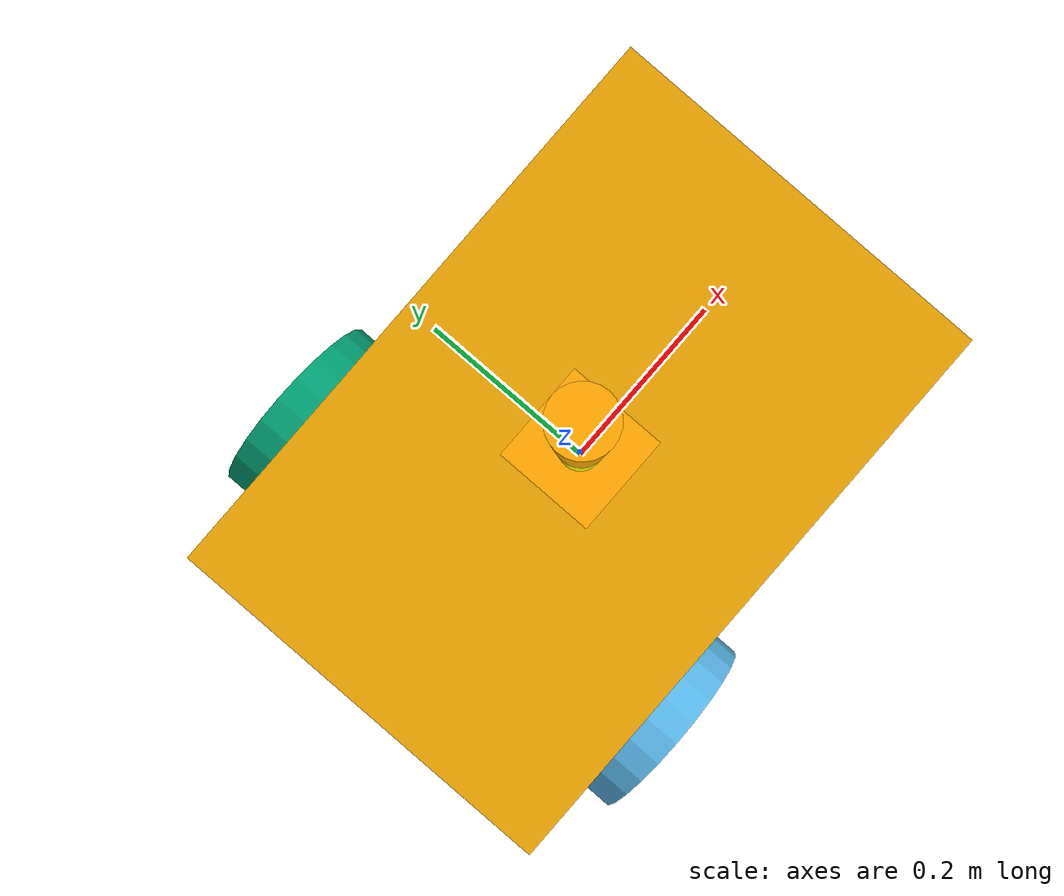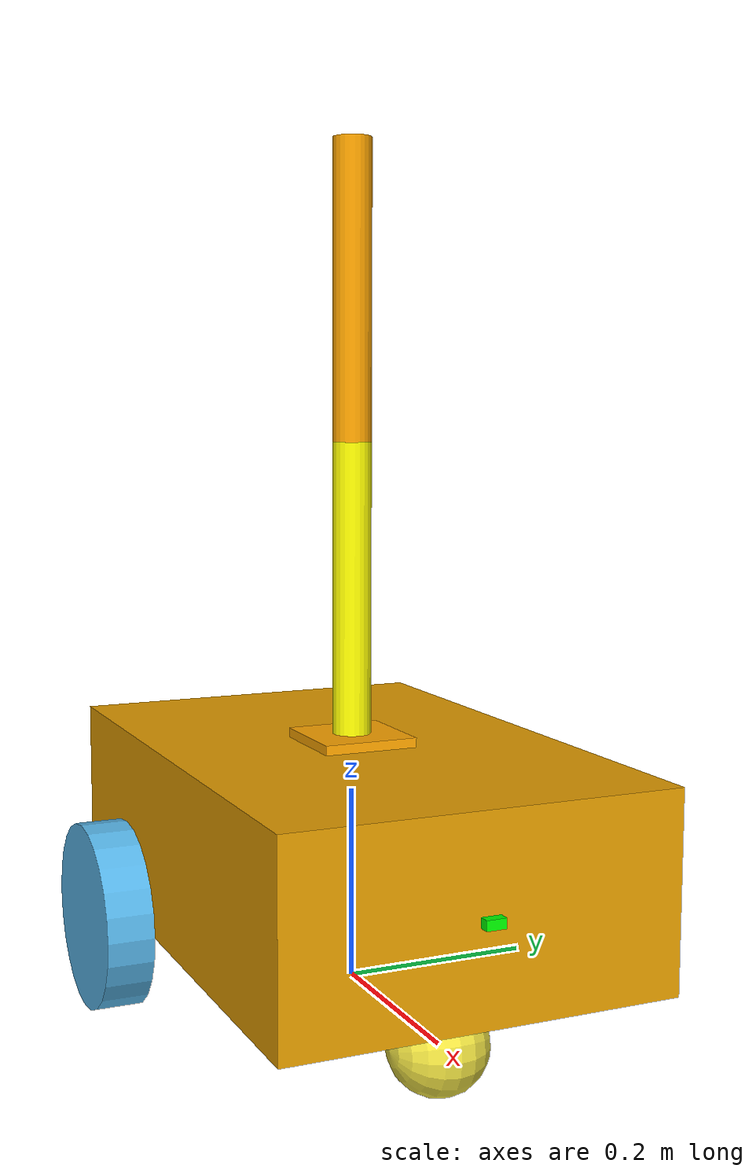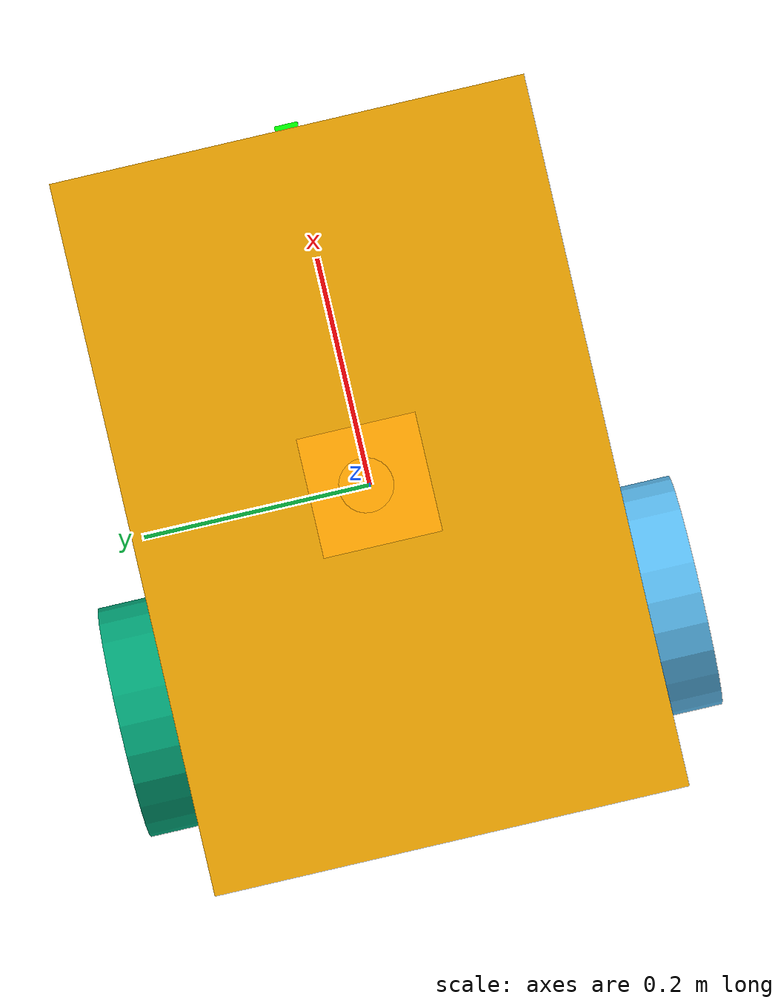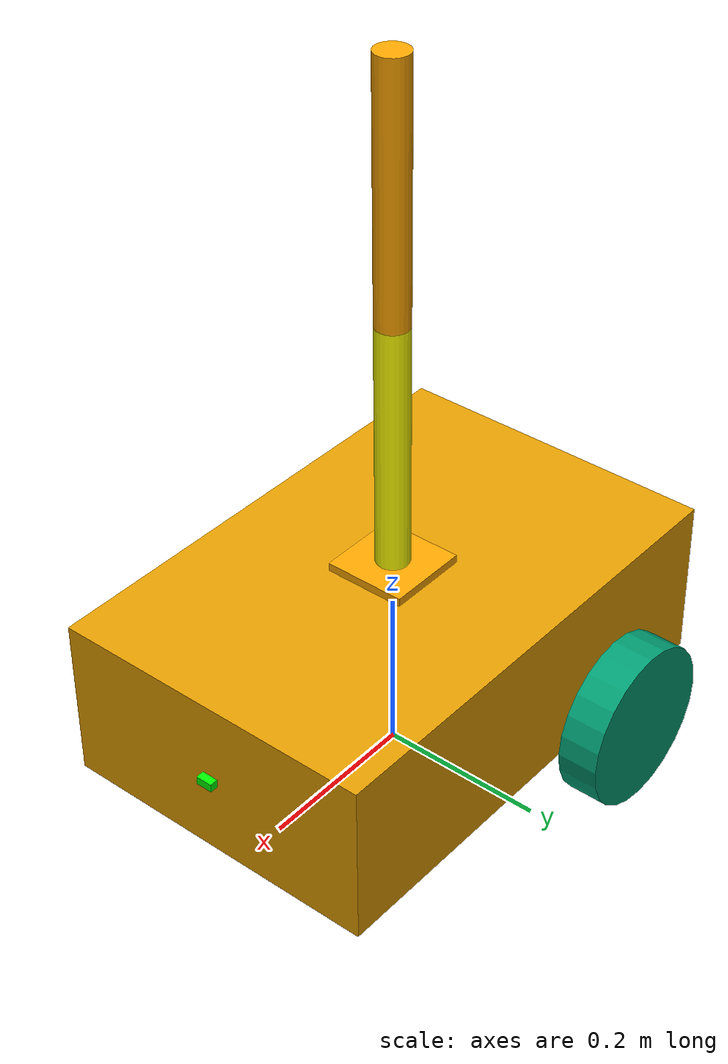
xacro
<?xml version="1.0"?>

<robot name="car" xmlns:xacro="http://www.ros.org/wiki/xacro">

<xacro:include filename="material.xacro" />
<xacro:include filename="mobile.links.xacro" />
<xacro:include filename="arm.links.xacro" />
<xacro:include filename="camera.xacro" />

<xacro:include filename="gazebo.plugin.xacro" />

</robot>

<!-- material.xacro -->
<!-- colors,inertia xacros -->
<robot xmlns:xacro="http://www.ros.org/wiki/xacro">
<!-- تعريف الألوان خارج الماكرو لتجنب تكرار التعريف -->
    <material name="red">
        <color rgba="1.0 0.0 0.0 1.0"/>
    </material>
    <material name="green">
        <color rgba="0.0 1.0 0.0 1.0"/>
    </material>
    <material name="blue">
        <color rgba="0.0 0.0 1.0 1.0"/>
    </material>
    <material name="yellow">
        <color rgba="1.0 1.0 0.0 1.0"/>
    </material>
      <material name="orange">
        <color rgba="1.0 0.65 0.0 1.0"/>
    </material>

    <xacro:macro name="rectagle_inertia" params=" m x y z o_xyz o_rpy ">
        <inertial>
            <mass value="${m}"/>
            <origin xyz="${o_xyz}" rpy="${o_rpy}"/>
            <inertia ixx="${(m/12)*(y*y+z*z)}" ixy="0.0" ixz="0.0" iyy="${(m/12)*(x*x+z*z)}" iyz="0.0" izz="${(m/12)*(y*y+x*x)}"/>
        </inertial>
    </xacro:macro>

    <xacro:macro name="sphere_inertia" params=" m r o_xyz o_rpy ">
    <inertial>
        <mass value="${m}"/>
        <origin xyz="${o_xyz}" rpy="${o_rpy}"/>
        <inertia ixx="${(2*m/5)*(r*r)}" ixy="0.0" ixz="0.0" iyy="${(2*m/5)*(r*r)}" iyz="0.0" izz="${(2*m/5)*(r*r)}"/>
    </inertial>
    </xacro:macro>

    <xacro:macro name="cylinder_inertia" params=" m r h  o_xyz o_rpy ">
    <inertial>
        <mass value="${m}"/>
        <origin xyz="${o_xyz}" rpy="${o_rpy}"/>
        <inertia ixx="${(m/12)*(3*(r*r)+h*h)}" ixy="0.0" ixz="0.0" iyy="${(m/12)*(3*(r*r)+h*h)}" iyz="0.0" izz="${(m/12)*(3*(r*r)+h*h)}"/>
    </inertial>
    </xacro:macro>

</robot>

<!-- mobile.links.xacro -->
<robot  xmlns:xacro="http://www.ros.org/wiki/xacro">

<xacro:property name="base_length" value="0.6"/>
<xacro:property name="base_width" value="0.4"/>
<xacro:property name="base_height" value="0.2"/>
<xacro:property name="wheel_radius" value="0.1"/>
<xacro:property name="wheel_length" value="0.05"/>
<xacro:property name="sphere_radius" value="0.05"/>

    <!-- الماكرو المصحح: تم تغيير param إلى params و raduis إلى radius -->
    <xacro:macro name="wheel_func" params="name radius length color x y z r p Y">
        <link name="${name}_wheel_link">
            <visual>
                <geometry>
                    <cylinder radius="${radius}" length="${length}"/>
                </geometry>
                <origin xyz="${x} ${y} ${z}" rpy="${r} ${p} ${Y}"/>

            </visual>
             <collision>
              <geometry>
                    <sphere radius="${wheel_radius}"/>
               <!-- له خط من النقاط المتصلة cylinder له نقطة اتصال واحدة فقط مع الارض ام  sphere من اجل تقليل المحاكاة الفيزيائية في غازيبو لانه لل cylinder بدل من  sphere استخدمنا  -->
              </geometry>
                <origin xyz="${x} ${y} ${z}" rpy="${r} ${p} ${Y}"/>

            </collision>
            <xacro:cylinder_inertia m="1.0" r="${radius}" h="${length}"  o_xyz="${x} ${y} ${z}" o_rpy="${r} ${p} ${Y}" />

        </link>
    </xacro:macro>

    <link name="base_link">
            <visual>
                <geometry>
                    <box size="${base_length} ${base_width} ${base_height}"/>
                </geometry>

            <origin xyz="0.0 0.0 ${wheel_radius} " rpy="0.0 0.0 0.0"/>
            </visual>
            <collision>
            <origin xyz="0.0 0.0  ${base_height/2.0} " rpy="0.0 0.0 0.0"/>
              <geometry>
                    <box size="${base_length} ${base_width} ${base_height}"/>
              </geometry>

            </collision>
            <xacro:rectagle_inertia m="5.0" x="${base_length}" y="${base_width}" z="${base_height}" o_rpy="0 0 0" o_xyz="0.0 0.0 ${wheel_radius}"/>
    </link>

    <xacro:wheel_func name="left" radius="${wheel_radius}" length="${wheel_length}" color="yellow" x="0.0" y="0.0" z="0.0" r="${pi/2}" p="0.0" Y="0.0" />
    <xacro:wheel_func name="right" radius="${wheel_radius}" length="${wheel_length}" color="blue" x="0.0" y="0.0" z="0.0" r="${pi/2}" p="0.0" Y="0.0" />

    <joint name="base_left" type="continuous">
        <parent link="base_link"/>
        <child link="left_wheel_link"/>
        <origin xyz="${-base_length /4} -0.225 0.0" rpy="0.0 0.0 0.0"/>
        <axis xyz="0.0 1.0 0.0"/>

    </joint>

<joint name="base_right" type="continuous">
        <parent link="base_link"/>
        <child link="right_wheel_link"/>
        <origin xyz="${-base_length /4} 0.225 0.0" rpy="0.0 0.0 0.0"/>
        <axis xyz="0.0 1.0 0.0"/>

    </joint>

<link name="center_wheel_link">
        <visual>

            <geometry>
            <sphere radius="${sphere_radius}"/>
            <material name="green"/>
            </geometry>
            <origin xyz="0.0 0 0" rpy="1.57 0.0 0.0"/>
        </visual>
         <xacro:sphere_inertia  m="0.5" r="${sphere_radius}" o_xyz="0.0 0 0" o_rpy="1.57 0.0 0.0"/>
            <collision>

           <geometry>

                    <sphere radius="${sphere_radius}"/>
              </geometry>
            <origin xyz="0.0 0 0" rpy="1.57 0.0 0.0"/>

            </collision>
        </link>

    <joint name="base_center" type="fixed">
        <parent link="base_link"/>
        <child link="center_wheel_link"/>
        <origin xyz="${base_length /3} 0 -0.05" rpy="0.0 0.0 0.0"/>

    </joint>

<link name="base_footprint">

</link>
<joint name="joint_name" type="fixed">
    <parent link="base_footprint"/>
    <child link="base_link"/>
    <origin xyz="0.0 0.0 0.05" rpy="0.0 0.0 0.0"/>
</joint>

</robot>

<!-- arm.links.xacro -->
<robot xmlns:xacro="http://www.ros.org/wiki/xacro">

<xacro:property name="arm_base_length" value="0.1"/>
<xacro:property name="arm_base_width" value="0.1"/>
<xacro:property name="arm_base_height" value="0.02"/>
<xacro:property name="arm_base_mass" value="0.5"/>

<xacro:property name="arm_radius" value="0.02"/>
<xacro:property name="arm_length" value="0.3"/>
<xacro:property name="arm_mass" value="0.3"/>

<xacro:macro name="arm" params=" link_name radius length o_xyz o_rpy m color">
    <link name="${link_name}_link">
        <visual>
            <geometry>
                <cylinder radius="${radius}" length="${length}"/>
            </geometry>
            <origin xyz="${o_xyz}" rpy="${o_rpy}"/>
            <material name="${color}"/>
        </visual>

        <collision>
            <geometry>
                <sphere radius="${radius}"/>
            </geometry>
            <origin xyz="${o_xyz}" rpy="${o_rpy}"/>
        </collision>
        <!-- 1. تم تصحيح الاسم إلى cylinder_inertia وتم تمرير البرامترات المعرفة في الماكرو بدلاً من x y z -->
        <xacro:cylinder_inertia m="${m}" r="${radius}" h="${length}" o_xyz="${o_xyz}" o_rpy="${o_rpy}" />
    </link>
</xacro:macro>

<xacro:macro name="base" params=" link_name length width height o_xyz o_rpy m color">
    <link name="${link_name}_link">
        <visual>
            <geometry>
                <box size="${length} ${width} ${height}"/>
            </geometry>
            <origin xyz="${o_xyz}" rpy="${o_rpy}"/>
            <material name="${color}"/>
        </visual>

        <collision>
            <geometry>
                <box size="${length} ${width} ${height}"/>
            </geometry>
            <origin xyz="${o_xyz}" rpy="${o_rpy}"/>
        </collision>
        <!-- 2. تم تمرير o_xyz و o_rpy هنا لحل مشكلة 'x is not defined' -->
        <xacro:rectagle_inertia m="${m}" x="${length}" y="${width}" z="${height}" o_xyz="${o_xyz}" o_rpy="${o_rpy}" />
    </link>
</xacro:macro>

<!-- استدعاء الماكرو لبناء الروابط مع ضبط الإزاحة Z لتبدأ الأذرع من فوق بعضها وليس من المنتصف -->
<xacro:base link_name="arm_base" length="${arm_base_length}" width="${arm_base_width}" height="${arm_base_height}" o_xyz="0.0 0.0 0.0" o_rpy="0.0 0.0 0.0" m="${arm_base_mass}" color="orange"/>
<xacro:arm link_name="forearm" radius="${arm_radius}" length="${arm_length}" o_xyz="0.0 0.0 ${arm_length/2}" o_rpy="0.0 0.0 0.0" m="${arm_mass}" color="yellow"/>
<xacro:arm link_name="hand" radius="${arm_radius}" length="${arm_length}" o_xyz="0.0 0.0 ${arm_length/2}" o_rpy="0.0 0.0 0.0" m="${arm_mass}" color="orange"/>
<joint name="base_armbase" type="fixed">
    <parent link="base_link"/>
    <child link="arm_base_link"/>
    <origin xyz="0 0 0.2" rpy="0 0 0"/>
</joint>

<!-- 3. المفاصل (Joints) وإضافة محور الدوران الإجباري axis -->
<joint name="armbase_forearm" type="revolute">
    <parent link="arm_base_link"/>
    <child link="forearm_link"/>
    <axis xyz="0 1 0"/>
    <limit lower="0" upper="${pi /2}" velocity="100.0" effort="100.0"/>
    <origin xyz="0 0 ${arm_base_height/2 }" rpy="0 0 0"/>
    <dynamics friction="0.3" damping="0.3" />
</joint>
<!--
4. تصحيح الاتصال ليصبح بين الساعد واليد (forearm -> hand) بدلاً من تكرار المفصل الأول -->
<joint name="forearm_hand" type="revolute">
    <parent link="forearm_link"/>
    <child link="hand_link"/>
    <axis xyz="0 1 0"/>
    <limit lower="0" upper="${pi /2}" velocity="100.0" effort="100.0"/>
    <origin xyz="0 0 ${arm_length}" rpy="0 0 0"/>
    <dynamics friction="0.3" damping="0.3" />
</joint>

</robot>

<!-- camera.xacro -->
<robot  xmlns:xacro="http://www.ros.org/wiki/xacro">

<xacro:property name="camera_length" value="0.01"/>
<xacro:property name="camera_width" value="0.02"/>
<xacro:property name="camera_height" value="0.01"/>

 <link name="camera_link">
        <visual>
            <geometry>
                <box size="${camera_length} ${camera_width} ${camera_height} "/>

            </geometry>

            <origin xyz="0.0 0.0 0.0" rpy="0.0 0.0 0.0"/>
     <material name="green"/>
     </visual>
     <collision>
            <origin xyz="0 0 0" rpy="0.0 0.0 0.0"/>
              <geometry>
                    <box size="${camera_length} ${camera_width} ${camera_height} "/>
              </geometry>

            </collision>
    <xacro:rectagle_inertia m="0.1" x="${camera_length}" y="${camera_width}" z="${camera_height}" o_rpy="0 0 0" o_xyz="0.0 0.0 0.0"/>

    </link>
<joint name="base_camera" type="fixed">
<parent link="base_link"/>
<child link="camera_link"/>
<origin xyz="${(base_length / 2.0) + (camera_length / 2.0)} 0 ${base_height / 2.0}" rpy="0 0 0"/>

</joint>
    <link name="camera_link_optical" />

    <joint name="camera_optical_joint" type="fixed">
        <origin xyz="0 0 0" rpy="${-pi/2} 0 ${-pi/2}"/>
        <parent link="camera_link"/>
        <child link="camera_link_optical"/>
    </joint>

    <gazebo reference="camera_link">
        <sensor name="camera" type="camera">
            <camera>
                <horizontal_fov>1.3962634</horizontal_fov>
                <image>
                    <width>640</width>
                    <height>480</height>
                    <format>R8G8B8</format>
                </image>
                <clip>
                    <near>0.1</near>
                    <far>15</far>
                </clip>
                <noise>
                    <type>gaussian</type>
                    <mean>0.0</mean>
                    <stddev>0.007</stddev>
                </noise>
                <optical_frame_id>camera_link_optical</optical_frame_id>
                <camera_info_topic>camera/camera_info</camera_info_topic>
            </camera>
            <always_on>1</always_on>
            <update_rate>20</update_rate>
            <visualize>true</visualize>
            <topic>camera/image_raw</topic>
        </sensor>
    </gazebo>

</robot>
